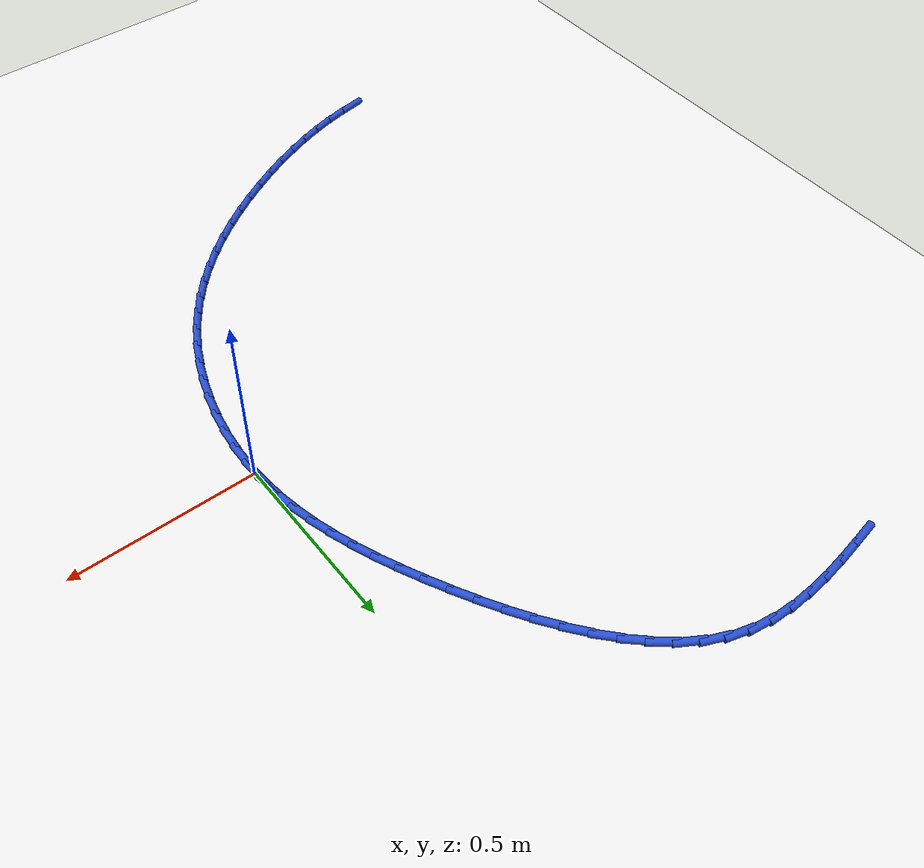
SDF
<sdf version="1.6">
 <world name="default">
  <model name="ground_plane">
   <static>1</static>
   <link name="link">
    <collision name="collision">
     <geometry><plane><normal>0 0 1</normal><size>100 100</size></plane></geometry>
     <surface><friction><ode><mu>100</mu><mu2>50</mu2></ode></friction></surface>
    </collision>
    <visual name="visual">
     <cast_shadows>0</cast_shadows>
     <geometry><plane><normal>0 0 1</normal><size>100 100</size></plane></geometry>
     <material>
      <script><uri>file://media/materials/scripts/gazebo.material</uri><name>Gazebo/WhiteGlow</name></script>
     </material>
    </visual>
   </link>
  </model>
  <model name="line">
   <link name="link_0">
    <pose>-6.938893903907228e-18 8.326672684688674e-17 0.01 0 1.57 -1.5165893141508675</pose>
    <collision name="collision">
     <geometry><cylinder><radius>0.01</radius><length>0.08</length></cylinder></geometry>
    </collision>
    <visual name="visual">
     <material>
      <script><name>Gazebo/Blue</name><uri>file://media/materials/scripts/gazebo.material</uri></script>
     </material>
     <geometry><cylinder><radius>0.01</radius><length>0.08</length></cylinder></geometry>
    </visual>
   </link>
   <link name="link_1">
    <pose>-0.0032631455324209544 0.060138875112593984 0.01 0 1.57 -1.448678575410986</pose>
    <collision name="collision">
     <geometry><cylinder><radius>0.01</radius><length>0.08</length></cylinder></geometry>
    </collision>
    <visual name="visual">
     <material>
      <script><name>Gazebo/Blue</name><uri>file://media/materials/scripts/gazebo.material</uri></script>
     </material>
     <geometry><cylinder><radius>0.01</radius><length>0.08</length></cylinder></geometry>
    </visual>
   </link>
   <link name="link_2">
    <pose>-0.010563067656500589 0.11961916050403254 0.01 0 1.57 -1.385131018402617</pose>
    <collision name="collision">
     <geometry><cylinder><radius>0.01</radius><length>0.08</length></cylinder></geometry>
    </collision>
    <visual name="visual">
     <material>
      <script><name>Gazebo/Blue</name><uri>file://media/materials/scripts/gazebo.material</uri></script>
     </material>
     <geometry><cylinder><radius>0.01</radius><length>0.08</length></cylinder></geometry>
    </visual>
   </link>
   <link name="link_3">
    <pose>-0.021635041208669152 0.1785663995216492 0.01 0 1.57 -1.3267123257096238</pose>
    <collision name="collision">
     <geometry><cylinder><radius>0.01</radius><length>0.08</length></cylinder></geometry>
    </collision>
    <visual name="visual">
     <material>
      <script><name>Gazebo/Blue</name><uri>file://media/materials/scripts/gazebo.material</uri></script>
     </material>
     <geometry><cylinder><radius>0.01</radius><length>0.08</length></cylinder></geometry>
    </visual>
   </link>
   <link name="link_4">
    <pose>-0.03621434102535686 0.23710613551277748 0.01 0 1.57 -1.2739222193216928</pose>
    <collision name="collision">
     <geometry><cylinder><radius>0.01</radius><length>0.08</length></cylinder></geometry>
    </collision>
    <visual name="visual">
     <material>
      <script><name>Gazebo/Blue</name><uri>file://media/materials/scripts/gazebo.material</uri></script>
     </material>
     <geometry><cylinder><radius>0.01</radius><length>0.08</length></cylinder></geometry>
    </visual>
   </link>
   <link name="link_5">
    <pose>-0.05403624194299403 0.29536391182475097 0.01 0 1.57 -1.2270201927214663</pose>
    <collision name="collision">
     <geometry><cylinder><radius>0.01</radius><length>0.08</length></cylinder></geometry>
    </collision>
    <visual name="visual">
     <material>
      <script><name>Gazebo/Blue</name><uri>file://media/materials/scripts/gazebo.material</uri></script>
     </material>
     <geometry><cylinder><radius>0.01</radius><length>0.08</length></cylinder></geometry>
    </visual>
   </link>
   <link name="link_6">
    <pose>-0.07483601879801083 0.35346527180490284 0.01 0 1.57 -1.1860701888268539</pose>
    <collision name="collision">
     <geometry><cylinder><radius>0.01</radius><length>0.08</length></cylinder></geometry>
    </collision>
    <visual name="visual">
     <material>
      <script><name>Gazebo/Blue</name><uri>file://media/materials/scripts/gazebo.material</uri></script>
     </material>
     <geometry><cylinder><radius>0.01</radius><length>0.08</length></cylinder></geometry>
    </visual>
   </link>
   <link name="link_7">
    <pose>-0.09834894642683756 0.4115357588005668 0.01 0 1.57 -1.1509914160212669</pose>
    <collision name="collision">
     <geometry><cylinder><radius>0.01</radius><length>0.08</length></cylinder></geometry>
    </collision>
    <visual name="visual">
     <material>
      <script><name>Gazebo/Blue</name><uri>file://media/materials/scripts/gazebo.material</uri></script>
     </material>
     <geometry><cylinder><radius>0.01</radius><length>0.08</length></cylinder></geometry>
    </visual>
   </link>
   <link name="link_8">
    <pose>-0.1243102996659044 0.46970091615907617 0.01 0 1.57 -1.1216062011905223</pose>
    <collision name="collision">
     <geometry><cylinder><radius>0.01</radius><length>0.08</length></cylinder></geometry>
    </collision>
    <visual name="visual">
     <material>
      <script><name>Gazebo/Blue</name><uri>file://media/materials/scripts/gazebo.material</uri></script>
     </material>
     <geometry><cylinder><radius>0.01</radius><length>0.08</length></cylinder></geometry>
    </visual>
   </link>
   <link name="link_9">
    <pose>-0.15245535335164168 0.5280862872277645 0.01 0 1.57 -1.0968428013232479</pose>
    <collision name="collision">
     <geometry><cylinder><radius>0.01</radius><length>0.08</length></cylinder></geometry>
    </collision>
    <visual name="visual">
     <material>
      <script><name>Gazebo/Blue</name><uri>file://media/materials/scripts/gazebo.material</uri></script>
     </material>
     <geometry><cylinder><radius>0.01</radius><length>0.08</length></cylinder></geometry>
    </visual>
   </link>
   <link name="link_10">
    <pose>-0.1825450172634661 0.5867463679172225 0.01 0 1.57 -1.0698999812404764</pose>
    <collision name="collision">
     <geometry><cylinder><radius>0.01</radius><length>0.08</length></cylinder></geometry>
    </collision>
    <visual name="visual">
     <material>
      <script><name>Gazebo/Blue</name><uri>file://media/materials/scripts/gazebo.material</uri></script>
     </material>
     <geometry><cylinder><radius>0.01</radius><length>0.08</length></cylinder></geometry>
    </visual>
   </link>
   <link name="link_11">
    <pose>-0.21453862688582348 0.6451857158084052 0.01 0 1.57 -1.0371924297299304</pose>
    <collision name="collision">
     <geometry><cylinder><radius>0.01</radius><length>0.08</length></cylinder></geometry>
    </collision>
    <visual name="visual">
     <material>
      <script><name>Gazebo/Blue</name><uri>file://media/materials/scripts/gazebo.material</uri></script>
     </material>
     <geometry><cylinder><radius>0.01</radius><length>0.08</length></cylinder></geometry>
    </visual>
   </link>
   <link name="link_12">
    <pose>-0.24848808703491052 0.7026523318850743 0.01 0 1.57 -0.9978788302692844</pose>
    <collision name="collision">
     <geometry><cylinder><radius>0.01</radius><length>0.08</length></cylinder></geometry>
    </collision>
    <visual name="visual">
     <material>
      <script><name>Gazebo/Blue</name><uri>file://media/materials/scripts/gazebo.material</uri></script>
     </material>
     <geometry><cylinder><radius>0.01</radius><length>0.08</length></cylinder></geometry>
    </visual>
   </link>
   <link name="link_13">
    <pose>-0.28444582296729987 0.758392774726584 0.01 0 1.57 -0.9508578667920221</pose>
    <collision name="collision">
     <geometry><cylinder><radius>0.01</radius><length>0.08</length></cylinder></geometry>
    </collision>
    <visual name="visual">
     <material>
      <script><name>Gazebo/Blue</name><uri>file://media/materials/scripts/gazebo.material</uri></script>
     </material>
     <geometry><cylinder><radius>0.01</radius><length>0.08</length></cylinder></geometry>
    </visual>
   </link>
   <link name="link_14">
    <pose>-0.32246425993956424 0.8116536029122895 0.01 0 1.57 -0.8947240623689201</pose>
    <collision name="collision">
     <geometry><cylinder><radius>0.01</radius><length>0.08</length></cylinder></geometry>
    </collision>
    <visual name="visual">
     <material>
      <script><name>Gazebo/Blue</name><uri>file://media/materials/scripts/gazebo.material</uri></script>
     </material>
     <geometry><cylinder><radius>0.01</radius><length>0.08</length></cylinder></geometry>
    </visual>
   </link>
   <link name="link_15">
    <pose>-0.3625958232082763 0.8616813750215458 0.01 0 1.57 -0.8277570991917472</pose>
    <collision name="collision">
     <geometry><cylinder><radius>0.01</radius><length>0.08</length></cylinder></geometry>
    </collision>
    <visual name="visual">
     <material>
      <script><name>Gazebo/Blue</name><uri>file://media/materials/scripts/gazebo.material</uri></script>
     </material>
     <geometry><cylinder><radius>0.01</radius><length>0.08</length></cylinder></geometry>
    </visual>
   </link>
   <link name="link_16">
    <pose>-0.4048929380300091 0.907722649633708 0.01 0 1.57 -0.7479664626017537</pose>
    <collision name="collision">
     <geometry><cylinder><radius>0.01</radius><length>0.08</length></cylinder></geometry>
    </collision>
    <visual name="visual">
     <material>
      <script><name>Gazebo/Blue</name><uri>file://media/materials/scripts/gazebo.material</uri></script>
     </material>
     <geometry><cylinder><radius>0.01</radius><length>0.08</length></cylinder></geometry>
    </visual>
   </link>
   <link name="link_17">
    <pose>-0.44940802966133486 0.9490239853281305 0.01 0 1.57 -0.6532620810947296</pose>
    <collision name="collision">
     <geometry><cylinder><radius>0.01</radius><length>0.08</length></cylinder></geometry>
    </collision>
    <visual name="visual">
     <material>
      <script><name>Gazebo/Blue</name><uri>file://media/materials/scripts/gazebo.material</uri></script>
     </material>
     <geometry><cylinder><radius>0.01</radius><length>0.08</length></cylinder></geometry>
    </visual>
   </link>
   <link name="link_18">
    <pose>-0.4961935233588267 0.9848319406841691 0.01 0 1.57 -0.5418577666612354</pose>
    <collision name="collision">
     <geometry><cylinder><radius>0.01</radius><length>0.08</length></cylinder></geometry>
    </collision>
    <visual name="visual">
     <material>
      <script><name>Gazebo/Blue</name><uri>file://media/materials/scripts/gazebo.material</uri></script>
     </material>
     <geometry><cylinder><radius>0.01</radius><length>0.08</length></cylinder></geometry>
    </visual>
   </link>
   <link name="link_19">
    <pose>-0.5453018443790573 1.0143930742811782 0.01 0 1.57 -0.41301035342826364</pose>
    <collision name="collision">
     <geometry><cylinder><radius>0.01</radius><length>0.08</length></cylinder></geometry>
    </collision>
    <visual name="visual">
     <material>
      <script><name>Gazebo/Blue</name><uri>file://media/materials/scripts/gazebo.material</uri></script>
     </material>
     <geometry><cylinder><radius>0.01</radius><length>0.08</length></cylinder></geometry>
    </visual>
   </link>
   <link name="link_20">
    <pose>-0.5967854179785992 1.0369539446985132 0.01 0 1.57 -0.27089902501011437</pose>
    <collision name="collision">
     <geometry><cylinder><radius>0.01</radius><length>0.08</length></cylinder></geometry>
    </collision>
    <visual name="visual">
     <material>
      <script><name>Gazebo/Blue</name><uri>file://media/materials/scripts/gazebo.material</uri></script>
     </material>
     <geometry><cylinder><radius>0.01</radius><length>0.08</length></cylinder></geometry>
    </visual>
   </link>
   <link name="link_21">
    <pose>-0.6506700229705978 1.0519191146712066 0.01 0 1.57 -0.1401696735006225</pose>
    <collision name="collision">
     <geometry><cylinder><radius>0.01</radius><length>0.08</length></cylinder></geometry>
    </collision>
    <visual name="visual">
     <material>
      <script><name>Gazebo/Blue</name><uri>file://media/materials/scripts/gazebo.material</uri></script>
     </material>
     <geometry><cylinder><radius>0.01</radius><length>0.08</length></cylinder></geometry>
    </visual>
   </link>
   <link name="link_22">
    <pose>-0.7067885091133218 1.0598371492288179 0.01 0 1.57 -0.03308693474255325</pose>
    <collision name="collision">
     <geometry><cylinder><radius>0.01</radius><length>0.08</length></cylinder></geometry>
    </collision>
    <visual name="visual">
     <material>
      <script><name>Gazebo/Blue</name><uri>file://media/materials/scripts/gazebo.material</uri></script>
     </material>
     <geometry><cylinder><radius>0.01</radius><length>0.08</length></cylinder></geometry>
    </visual>
   </link>
   <link name="link_23">
    <pose>-0.7648887974002992 1.0617602114815368 0.01 0 1.57 0.05039318532907318</pose>
    <collision name="collision">
     <geometry><cylinder><radius>0.01</radius><length>0.08</length></cylinder></geometry>
    </collision>
    <visual name="visual">
     <material>
      <script><name>Gazebo/Blue</name><uri>file://media/materials/scripts/gazebo.material</uri></script>
     </material>
     <geometry><cylinder><radius>0.01</radius><length>0.08</length></cylinder></geometry>
    </visual>
   </link>
   <link name="link_24">
    <pose>-0.8247184401872973 1.0587426504334523 0.01 0 1.57 0.112139274177394</pose>
    <collision name="collision">
     <geometry><cylinder><radius>0.01</radius><length>0.08</length></cylinder></geometry>
    </collision>
    <visual name="visual">
     <material>
      <script><name>Gazebo/Blue</name><uri>file://media/materials/scripts/gazebo.material</uri></script>
     </material>
     <geometry><cylinder><radius>0.01</radius><length>0.08</length></cylinder></geometry>
    </visual>
   </link>
   <link name="link_25">
    <pose>-0.8860249898300842 1.0518388150886533 0.01 0 1.57 0.15445484826466174</pose>
    <collision name="collision">
     <geometry><cylinder><radius>0.01</radius><length>0.08</length></cylinder></geometry>
    </collision>
    <visual name="visual">
     <material>
      <script><name>Gazebo/Blue</name><uri>file://media/materials/scripts/gazebo.material</uri></script>
     </material>
     <geometry><cylinder><radius>0.01</radius><length>0.08</length></cylinder></geometry>
    </visual>
   </link>
   <link name="link_26">
    <pose>-0.9485559986844264 1.0421030544512284 0.01 0 1.57 0.17935550284337978</pose>
    <collision name="collision">
     <geometry><cylinder><radius>0.01</radius><length>0.08</length></cylinder></geometry>
    </collision>
    <visual name="visual">
     <material>
      <script><name>Gazebo/Blue</name><uri>file://media/materials/scripts/gazebo.material</uri></script>
     </material>
     <geometry><cylinder><radius>0.01</radius><length>0.08</length></cylinder></geometry>
    </visual>
   </link>
   <link name="link_27">
    <pose>-1.0120590191060919 1.030589717525266 0.01 0 1.57 0.18827696459286708</pose>
    <collision name="collision">
     <geometry><cylinder><radius>0.01</radius><length>0.08</length></cylinder></geometry>
    </collision>
    <visual name="visual">
     <material>
      <script><name>Gazebo/Blue</name><uri>file://media/materials/scripts/gazebo.material</uri></script>
     </material>
     <geometry><cylinder><radius>0.01</radius><length>0.08</length></cylinder></geometry>
    </visual>
   </link>
   <link name="link_84">
    <pose>-1.024505564886802 -1.066269320290332 0.01 0 1.57 0.17610511736784315</pose>
    <collision name="collision">
     <geometry><cylinder><radius>0.01</radius><length>0.08</length></cylinder></geometry>
    </collision>
    <visual name="visual">
     <material>
      <script><name>Gazebo/Blue</name><uri>file://media/materials/scripts/gazebo.material</uri></script>
     </material>
     <geometry><cylinder><radius>0.01</radius><length>0.08</length></cylinder></geometry>
    </visual>
   </link>
   <link name="link_85">
    <pose>-0.9641275903197689 -1.0555251499764093 0.01 0 1.57 0.23345110667349367</pose>
    <collision name="collision">
     <geometry><cylinder><radius>0.01</radius><length>0.08</length></cylinder></geometry>
    </collision>
    <visual name="visual">
     <material>
      <script><name>Gazebo/Blue</name><uri>file://media/materials/scripts/gazebo.material</uri></script>
     </material>
     <geometry><cylinder><radius>0.01</radius><length>0.08</length></cylinder></geometry>
    </visual>
   </link>
   <link name="link_86">
    <pose>-0.904281323030323 -1.0412945078877518 0.01 0 1.57 0.2868188346372082</pose>
    <collision name="collision">
     <geometry><cylinder><radius>0.01</radius><length>0.08</length></cylinder></geometry>
    </collision>
    <visual name="visual">
     <material>
      <script><name>Gazebo/Blue</name><uri>file://media/materials/scripts/gazebo.material</uri></script>
     </material>
     <geometry><cylinder><radius>0.01</radius><length>0.08</length></cylinder></geometry>
    </visual>
   </link>
   <link name="link_87">
    <pose>-0.8450532191301873 -1.0238250831760602 0.01 0 1.57 0.33632920819280476</pose>
    <collision name="collision">
     <geometry><cylinder><radius>0.01</radius><length>0.08</length></cylinder></geometry>
    </collision>
    <visual name="visual">
     <material>
      <script><name>Gazebo/Blue</name><uri>file://media/materials/scripts/gazebo.material</uri></script>
     </material>
     <geometry><cylinder><radius>0.01</radius><length>0.08</length></cylinder></geometry>
    </visual>
   </link>
   <link name="link_88">
    <pose>-0.7865297347310877 -1.003364564993036 0.01 0 1.57 0.382162134469025</pose>
    <collision name="collision">
     <geometry><cylinder><radius>0.01</radius><length>0.08</length></cylinder></geometry>
    </collision>
    <visual name="visual">
     <material>
      <script><name>Gazebo/Blue</name><uri>file://media/materials/scripts/gazebo.material</uri></script>
     </material>
     <geometry><cylinder><radius>0.01</radius><length>0.08</length></cylinder></geometry>
    </visual>
   </link>
   <link name="link_89">
    <pose>-0.7287973259447471 -0.98016064249038 0.01 0 1.57 0.4245338934679987</pose>
    <collision name="collision">
     <geometry><cylinder><radius>0.01</radius><length>0.08</length></cylinder></geometry>
    </collision>
    <visual name="visual">
     <material>
      <script><name>Gazebo/Blue</name><uri>file://media/materials/scripts/gazebo.material</uri></script>
     </material>
     <geometry><cylinder><radius>0.01</radius><length>0.08</length></cylinder></geometry>
    </visual>
   </link>
   <link name="link_90">
    <pose>-0.6719424488828919 -0.9544610048197941 0.01 0 1.57 0.46367937144052246</pose>
    <collision name="collision">
     <geometry><cylinder><radius>0.01</radius><length>0.08</length></cylinder></geometry>
    </collision>
    <visual name="visual">
     <material>
      <script><name>Gazebo/Blue</name><uri>file://media/materials/scripts/gazebo.material</uri></script>
     </material>
     <geometry><cylinder><radius>0.01</radius><length>0.08</length></cylinder></geometry>
    </visual>
   </link>
   <link name="link_91">
    <pose>-0.6160515596572448 -0.9265133411329786 0.01 0 1.57 0.499918758358729</pose>
    <collision name="collision">
     <geometry><cylinder><radius>0.01</radius><length>0.08</length></cylinder></geometry>
    </collision>
    <visual name="visual">
     <material>
      <script><name>Gazebo/Blue</name><uri>file://media/materials/scripts/gazebo.material</uri></script>
     </material>
     <geometry><cylinder><radius>0.01</radius><length>0.08</length></cylinder></geometry>
    </visual>
   </link>
   <link name="link_92">
    <pose>-0.5612132114559132 -0.8965607994981013 0.01 0 1.57 0.536122632424267</pose>
    <collision name="collision">
     <geometry><cylinder><radius>0.01</radius><length>0.08</length></cylinder></geometry>
    </collision>
    <visual name="visual">
     <material>
      <script><name>Gazebo/Blue</name><uri>file://media/materials/scripts/gazebo.material</uri></script>
     </material>
     <geometry><cylinder><radius>0.01</radius><length>0.08</length></cylinder></geometry>
    </visual>
   </link>
   <link name="link_93">
    <pose>-0.5075852039531555 -0.864696579187525 0.01 0 1.57 0.575683543828606</pose>
    <collision name="collision">
     <geometry><cylinder><radius>0.01</radius><length>0.08</length></cylinder></geometry>
    </collision>
    <visual name="visual">
     <material>
      <script><name>Gazebo/Blue</name><uri>file://media/materials/scripts/gazebo.material</uri></script>
     </material>
     <geometry><cylinder><radius>0.01</radius><length>0.08</length></cylinder></geometry>
    </visual>
   </link>
   <link name="link_94">
    <pose>-0.4554087697632945 -0.8308332108276298 0.01 0 1.57 0.618996284491713</pose>
    <collision name="collision">
     <geometry><cylinder><radius>0.01</radius><length>0.08</length></cylinder></geometry>
    </collision>
    <visual name="visual">
     <material>
      <script><name>Gazebo/Blue</name><uri>file://media/materials/scripts/gazebo.material</uri></script>
     </material>
     <geometry><cylinder><radius>0.01</radius><length>0.08</length></cylinder></geometry>
    </visual>
   </link>
   <link name="link_95">
    <pose>-0.40493010679698116 -0.7948724730161065 0.01 0 1.57 0.6662485019961215</pose>
    <collision name="collision">
     <geometry><cylinder><radius>0.01</radius><length>0.08</length></cylinder></geometry>
    </collision>
    <visual name="visual">
     <material>
      <script><name>Gazebo/Blue</name><uri>file://media/materials/scripts/gazebo.material</uri></script>
     </material>
     <geometry><cylinder><radius>0.01</radius><length>0.08</length></cylinder></geometry>
    </visual>
   </link>
   <link name="link_96">
    <pose>-0.3563954129648695 -0.7567161443506479 0.01 0 1.57 0.7175904357796806</pose>
    <collision name="collision">
     <geometry><cylinder><radius>0.01</radius><length>0.08</length></cylinder></geometry>
    </collision>
    <visual name="visual">
     <material>
      <script><name>Gazebo/Blue</name><uri>file://media/materials/scripts/gazebo.material</uri></script>
     </material>
     <geometry><cylinder><radius>0.01</radius><length>0.08</length></cylinder></geometry>
    </visual>
   </link>
   <link name="link_97">
    <pose>-0.31005088617761134 -0.716266003428945 0.01 0 1.57 0.7731107919861339</pose>
    <collision name="collision">
     <geometry><cylinder><radius>0.01</radius><length>0.08</length></cylinder></geometry>
    </collision>
    <visual name="visual">
     <material>
      <script><name>Gazebo/Blue</name><uri>file://media/materials/scripts/gazebo.material</uri></script>
     </material>
     <geometry><cylinder><radius>0.01</radius><length>0.08</length></cylinder></geometry>
    </visual>
   </link>
   <link name="link_98">
    <pose>-0.2661427243458586 -0.6734238288486891 0.01 0 1.57 0.8328085912840368</pose>
    <collision name="collision">
     <geometry><cylinder><radius>0.01</radius><length>0.08</length></cylinder></geometry>
    </collision>
    <visual name="visual">
     <material>
      <script><name>Gazebo/Blue</name><uri>file://media/materials/scripts/gazebo.material</uri></script>
     </material>
     <geometry><cylinder><radius>0.01</radius><length>0.08</length></cylinder></geometry>
    </visual>
   </link>
   <link name="link_99">
    <pose>-0.22491712538026498 -0.6280913992075725 0.01 0 1.57 0.8965631177109121</pose>
    <collision name="collision">
     <geometry><cylinder><radius>0.01</radius><length>0.08</length></cylinder></geometry>
    </collision>
    <visual name="visual">
     <material>
      <script><name>Gazebo/Blue</name><uri>file://media/materials/scripts/gazebo.material</uri></script>
     </material>
     <geometry><cylinder><radius>0.01</radius><length>0.08</length></cylinder></geometry>
    </visual>
   </link>
   <link name="link_100">
    <pose>-0.186620287191482 -0.5801704931032862 0.01 0 1.57 0.9640953584371011</pose>
    <collision name="collision">
     <geometry><cylinder><radius>0.01</radius><length>0.08</length></cylinder></geometry>
    </collision>
    <visual name="visual">
     <material>
      <script><name>Gazebo/Blue</name><uri>file://media/materials/scripts/gazebo.material</uri></script>
     </material>
     <geometry><cylinder><radius>0.01</radius><length>0.08</length></cylinder></geometry>
    </visual>
   </link>
   <link name="link_101">
    <pose>-0.1514981698610814 -0.5295636821805588 0.01 0 1.57 1.0332222828579973</pose>
    <collision name="collision">
     <geometry><cylinder><radius>0.01</radius><length>0.08</length></cylinder></geometry>
    </collision>
    <visual name="visual">
     <material>
      <script><name>Gazebo/Blue</name><uri>file://media/materials/scripts/gazebo.material</uri></script>
     </material>
     <geometry><cylinder><radius>0.01</radius><length>0.08</length></cylinder></geometry>
    </visual>
   </link>
   <link name="link_102">
    <pose>-0.11975443145071879 -0.47631459523023734 0.01 0 1.57 1.100263796694076</pose>
    <collision name="collision">
     <geometry><cylinder><radius>0.01</radius><length>0.08</length></cylinder></geometry>
    </collision>
    <visual name="visual">
     <material>
      <script><name>Gazebo/Blue</name><uri>file://media/materials/scripts/gazebo.material</uri></script>
     </material>
     <geometry><cylinder><radius>0.01</radius><length>0.08</length></cylinder></geometry>
    </visual>
   </link>
   <link name="link_103">
    <pose>-0.09150205411495584 -0.42076922212906154 0.01 0 1.57 1.1653828417572256</pose>
    <collision name="collision">
     <geometry><cylinder><radius>0.01</radius><length>0.08</length></cylinder></geometry>
    </collision>
    <visual name="visual">
     <material>
      <script><name>Gazebo/Blue</name><uri>file://media/materials/scripts/gazebo.material</uri></script>
     </material>
     <geometry><cylinder><radius>0.01</radius><length>0.08</length></cylinder></geometry>
    </visual>
   </link>
   <link name="link_104">
    <pose>-0.0668423054388705 -0.3633126152794482 0.01 0 1.57 1.229268220682436</pose>
    <collision name="collision">
     <geometry><cylinder><radius>0.01</radius><length>0.08</length></cylinder></geometry>
    </collision>
    <visual name="visual">
     <material>
      <script><name>Gazebo/Blue</name><uri>file://media/materials/scripts/gazebo.material</uri></script>
     </material>
     <geometry><cylinder><radius>0.01</radius><length>0.08</length></cylinder></geometry>
    </visual>
   </link>
   <link name="link_105">
    <pose>-0.04587645300754199 -0.30432982708381634 0.01 0 1.57 1.2926131287810954</pose>
    <collision name="collision">
     <geometry><cylinder><radius>0.01</radius><length>0.08</length></cylinder></geometry>
    </collision>
    <visual name="visual">
     <material>
      <script><name>Gazebo/Blue</name><uri>file://media/materials/scripts/gazebo.material</uri></script>
     </material>
     <geometry><cylinder><radius>0.01</radius><length>0.08</length></cylinder></geometry>
    </visual>
   </link>
   <link name="link_106">
    <pose>-0.028705764406048495 -0.24420590994458305 0.01 0 1.57 1.3561165651754594</pose>
    <collision name="collision">
     <geometry><cylinder><radius>0.01</radius><length>0.08</length></cylinder></geometry>
    </collision>
    <visual name="visual">
     <material>
      <script><name>Gazebo/Blue</name><uri>file://media/materials/scripts/gazebo.material</uri></script>
     </material>
     <geometry><cylinder><radius>0.01</radius><length>0.08</length></cylinder></geometry>
    </visual>
   </link>
   <link name="link_107">
    <pose>-0.01543150721946902 -0.1833259162641672 0.01 0 1.57 1.420487127849315</pose>
    <collision name="collision">
     <geometry><cylinder><radius>0.01</radius><length>0.08</length></cylinder></geometry>
    </collision>
    <visual name="visual">
     <material>
      <script><name>Gazebo/Blue</name><uri>file://media/materials/scripts/gazebo.material</uri></script>
     </material>
     <geometry><cylinder><radius>0.01</radius><length>0.08</length></cylinder></geometry>
    </visual>
   </link>
   <link name="link_108">
    <pose>-0.0061549490328819245 -0.12207489844498565 0.01 0 1.57 1.48644687424213</pose>
    <collision name="collision">
     <geometry><cylinder><radius>0.01</radius><length>0.08</length></cylinder></geometry>
    </collision>
    <visual name="visual">
     <material>
      <script><name>Gazebo/Blue</name><uri>file://media/materials/scripts/gazebo.material</uri></script>
     </material>
     <geometry><cylinder><radius>0.01</radius><length>0.08</length></cylinder></geometry>
    </visual>
   </link>
   <link name="link_109">
    <pose>-0.0009773574313660799 -0.0608379088894577 0.01 0 1.57 1.5547327673685571</pose>
    <collision name="collision">
     <geometry><cylinder><radius>0.01</radius><length>0.08</length></cylinder></geometry>
    </collision>
    <visual name="visual">
     <material>
      <script><name>Gazebo/Blue</name><uri>file://media/materials/scripts/gazebo.material</uri></script>
     </material>
     <geometry><cylinder><radius>0.01</radius><length>0.08</length></cylinder></geometry>
    </visual>
   </link>
   <link name="link_110">
    <pose>6.938893903907228e-18 1.942890293094024e-16 0.01 0 1.57 -1.5154999607943347</pose>
    <collision name="collision">
     <geometry><cylinder><radius>0.01</radius><length>0.08</length></cylinder></geometry>
    </collision>
    <visual name="visual">
     <material>
      <script><name>Gazebo/Blue</name><uri>file://media/materials/scripts/gazebo.material</uri></script>
     </material>
     <geometry><cylinder><radius>0.01</radius><length>0.08</length></cylinder></geometry>
    </visual>
   </link>
   <link name="link_111">
    <pose>-0.0033241443238623165 0.06005377582096849 0.01 0 1.57 -1.5154999607943351</pose>
    <collision name="collision">
     <geometry><cylinder><radius>0.01</radius><length>0.08</length></cylinder></geometry>
    </collision>
    <visual name="visual">
     <material>
      <script><name>Gazebo/Blue</name><uri>file://media/materials/scripts/gazebo.material</uri></script>
     </material>
     <geometry><cylinder><radius>0.01</radius><length>0.08</length></cylinder></geometry>
    </visual>
   </link>
  </model>
 </world>
</sdf>
